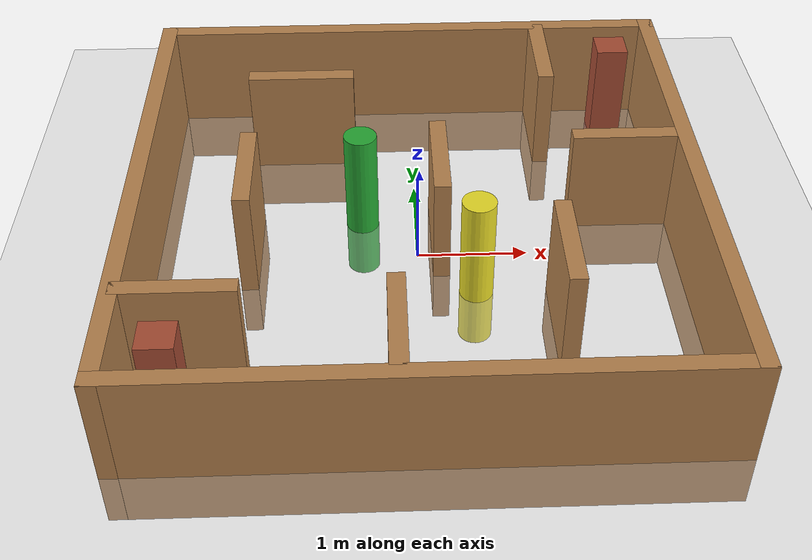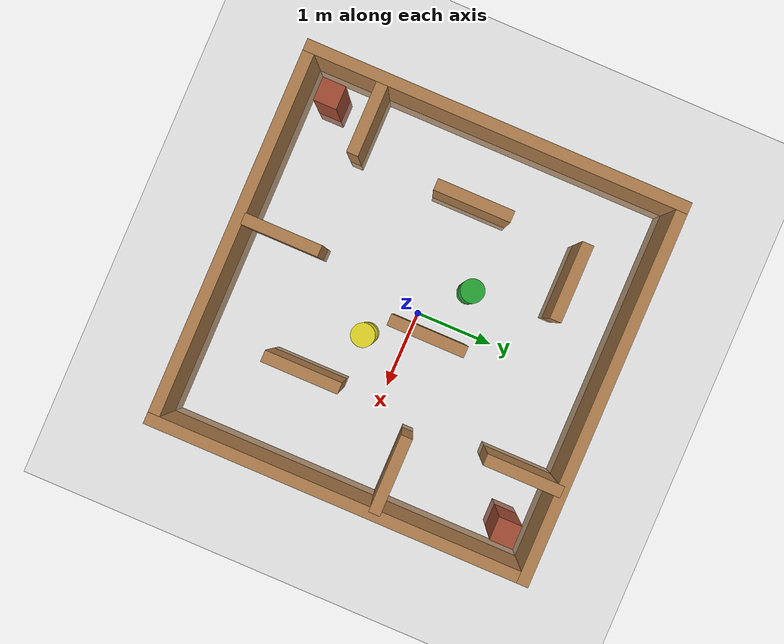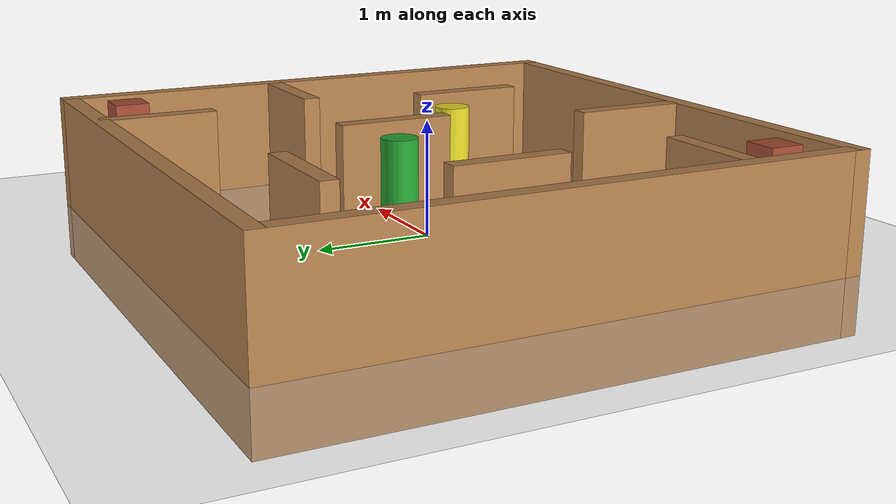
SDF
<sdf version='1.4'>
  <world name='default'>
    <!-- A global light source -->
    <include>
      <uri>model://sun</uri>
    </include>

    <!-- A ground plane -->
    <include>
      <uri>model://ground_plane</uri>
    </include>

    <physics type="ode">
      <real_time_update_rate>1000.0</real_time_update_rate>
      <max_step_size>0.001</max_step_size>
      <real_time_factor>1</real_time_factor>
      <ode>
        <solver>
          <type>quick</type>
          <iters>150</iters>
          <precon_iters>0</precon_iters>
          <sor>1.400000</sor>
          <use_dynamic_moi_rescaling>1</use_dynamic_moi_rescaling>
        </solver>
        <constraints>
          <cfm>0.00001</cfm>
          <erp>0.2</erp>
          <contact_max_correcting_vel>2000.000000</contact_max_correcting_vel>
          <contact_surface_layer>0.01000</contact_surface_layer>
        </constraints>
      </ode>
    </physics>

    <!-- Load world -->
    <include>
      <uri>model://my_plaza</uri>
    </include>

    <scene>
      <ambient>0.4 0.4 0.4 1</ambient>
      <background>0.7 0.7 0.7 1</background>
      <shadows>true</shadows>
    </scene>

    <gui fullscreen='0'>
      <camera name='user_camera'>
        <pose>0.8 0.0 12.0 0 1.5708 0</pose>
        <view_controller>orbit</view_controller>
      </camera>
    </gui>
  </world>
</sdf>

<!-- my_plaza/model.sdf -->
<sdf version='1.6'>
  <model name='my_plaza'>
    <pose frame=''>0 0 0 0 -0 0</pose>
    <link name='Wall_0'>
      <collision name='Wall_0_Collision'>
        <geometry>
          <box>
            <size>5 0.15 1.5</size>
          </box>
        </geometry>
        <pose frame=''>0 0 0.25 0 -0 0</pose>
      </collision>
      <visual name='Wall_0_Visual'>
        <pose frame=''>0 0 0.25 0 -0 0</pose>
        <geometry>
          <box>
            <size>5 0.15 1.5</size>
          </box>
        </geometry>
        <material>
          <script>
            <uri>file://media/materials/scripts/gazebo.material</uri>
            <name>Gazebo/Wood</name>
          </script>
          <ambient>1 1 1 1</ambient>
        </material>
      </visual>
      <pose frame=''>-2.425 0 0 0 -0 1.5708</pose>
    </link>
    <link name='Wall_11'>
      <collision name='Wall_11_Collision'>
        <geometry>
          <box>
            <size>1 0.15 1.5</size>
          </box>
        </geometry>
        <pose frame=''>0 0 0.25 0 -0 0</pose>
      </collision>
      <visual name='Wall_11_Visual'>
        <pose frame=''>0 0 0.25 0 -0 0</pose>
        <geometry>
          <box>
            <size>1 0.15 1.5</size>
          </box>
        </geometry>
        <material>
          <script>
            <uri>file://media/materials/scripts/gazebo.material</uri>
            <name>Gazebo/Wood</name>
          </script>
          <ambient>1 1 1 1</ambient>
        </material>
      </visual>
      <pose frame=''>-1.937 -1.467 0 0 -0 0</pose>
    </link>
    <link name='Wall_13'>
      <collision name='Wall_13_Collision'>
        <geometry>
          <box>
            <size>1 0.15 1.5</size>
          </box>
        </geometry>
        <pose frame=''>0 0 0.25 0 -0 0</pose>
      </collision>
      <visual name='Wall_13_Visual'>
        <pose frame=''>0 0 0.25 0 -0 0</pose>
        <geometry>
          <box>
            <size>1 0.15 1.5</size>
          </box>
        </geometry>
        <material>
          <script>
            <uri>file://media/materials/scripts/gazebo.material</uri>
            <name>Gazebo/Wood</name>
          </script>
          <ambient>1 1 1 1</ambient>
        </material>
      </visual>
      <pose frame=''>-0.22 -1.866 0 0 0 -1.5708</pose>
    </link>
    <link name='Wall_15'>
      <collision name='Wall_15_Collision'>
        <geometry>
          <box>
            <size>1 0.15 1.5</size>
          </box>
        </geometry>
        <pose frame=''>0 0 0.25 0 -0 0</pose>
      </collision>
      <visual name='Wall_15_Visual'>
        <pose frame=''>0 0 0.25 0 -0 0</pose>
        <geometry>
          <box>
            <size>1 0.15 1.5</size>
          </box>
        </geometry>
        <material>
          <script>
            <uri>file://media/materials/scripts/gazebo.material</uri>
            <name>Gazebo/Wood</name>
          </script>
          <ambient>1 1 1 1</ambient>
        </material>
      </visual>
      <pose frame=''>1.195 -1.002 0 0 -0 1.5708</pose>
    </link>
    <link name='Wall_17'>
      <collision name='Wall_17_Collision'>
        <geometry>
          <box>
            <size>1 0.15 1.5</size>
          </box>
        </geometry>
        <pose frame=''>0 0 0.25 0 -0 0</pose>
      </collision>
      <visual name='Wall_17_Visual'>
        <pose frame=''>0 0 0.25 0 -0 0</pose>
        <geometry>
          <box>
            <size>1 0.15 1.5</size>
          </box>
        </geometry>
        <material>
          <script>
            <uri>file://media/materials/scripts/gazebo.material</uri>
            <name>Gazebo/Wood</name>
          </script>
          <ambient>1 1 1 1</ambient>
        </material>
      </visual>
      <pose frame=''>1.288 1.93 0 0 0 -1.5708</pose>
    </link>
    <link name='Wall_19'>
      <collision name='Wall_19_Collision'>
        <geometry>
          <box>
            <size>1 0.15 1.5</size>
          </box>
        </geometry>
        <pose frame=''>0 0 0.25 0 -0 0</pose>
      </collision>
      <visual name='Wall_19_Visual'>
        <pose frame=''>0 0 0.25 0 -0 0</pose>
        <geometry>
          <box>
            <size>1 0.15 1.5</size>
          </box>
        </geometry>
        <material>
          <script>
            <uri>file://media/materials/scripts/gazebo.material</uri>
            <name>Gazebo/Wood</name>
          </script>
          <ambient>1 1 1 1</ambient>
        </material>
      </visual>
      <pose frame=''>1.91128 0.4632 0 0 -0 0</pose>
    </link>
    <link name='Wall_2'>
      <collision name='Wall_2_Collision'>
        <geometry>
          <box>
            <size>5 0.15 1.5</size>
          </box>
        </geometry>
        <pose frame=''>0 0 0.25 0 -0 0</pose>
      </collision>
      <visual name='Wall_2_Visual'>
        <pose frame=''>0 0 0.25 0 -0 0</pose>
        <geometry>
          <box>
            <size>5 0.15 1.5</size>
          </box>
        </geometry>
        <material>
          <script>
            <uri>file://media/materials/scripts/gazebo.material</uri>
            <name>Gazebo/Wood</name>
          </script>
          <ambient>1 1 1 1</ambient>
        </material>
      </visual>
      <pose frame=''>0 2.425 0 0 -0 0</pose>
    </link>
    <link name='Wall_21'>
      <collision name='Wall_21_Collision'>
        <geometry>
          <box>
            <size>1 0.15 1.5</size>
          </box>
        </geometry>
        <pose frame=''>0 0 0.25 0 -0 0</pose>
      </collision>
      <visual name='Wall_21_Visual'>
        <pose frame=''>0 0 0.25 0 -0 0</pose>
        <geometry>
          <box>
            <size>1 0.15 1.5</size>
          </box>
        </geometry>
        <material>
          <script>
            <uri>file://media/materials/scripts/gazebo.material</uri>
            <name>Gazebo/Wood</name>
          </script>
          <ambient>1 1 1 1</ambient>
        </material>
      </visual>
      <pose frame=''>0.204 0.215 0 0 0 -1.5708</pose>
    </link>
    <link name='Wall_3'>
      <collision name='Wall_3_Collision'>
        <geometry>
          <box>
            <size>5 0.15 1.5</size>
          </box>
        </geometry>
        <pose frame=''>0 0 0.25 0 -0 0</pose>
      </collision>
      <visual name='Wall_3_Visual'>
        <pose frame=''>0 0 0.25 0 -0 0</pose>
        <geometry>
          <box>
            <size>5 0.15 1.5</size>
          </box>
        </geometry>
        <material>
          <script>
            <uri>file://media/materials/scripts/gazebo.material</uri>
            <name>Gazebo/Wood</name>
          </script>
          <ambient>1 1 1 1</ambient>
        </material>
      </visual>
      <pose frame=''>2.425 0 0 0 0 -1.5708</pose>
    </link>
    <link name='Wall_4'>
      <collision name='Wall_4_Collision'>
        <geometry>
          <box>
            <size>5 0.15 1.5</size>
          </box>
        </geometry>
        <pose frame=''>0 0 0.25 0 -0 0</pose>
      </collision>
      <visual name='Wall_4_Visual'>
        <pose frame=''>0 0 0.25 0 -0 0</pose>
        <geometry>
          <box>
            <size>5 0.15 1.5</size>
          </box>
        </geometry>
        <material>
          <script>
            <uri>file://media/materials/scripts/gazebo.material</uri>
            <name>Gazebo/Wood</name>
          </script>
          <ambient>1 1 1 1</ambient>
        </material>
      </visual>
      <pose frame=''>0 -2.425 0 0 -0 3.14159</pose>
    </link>
    <link name='Wall_7'>
      <collision name='Wall_7_Collision'>
        <geometry>
          <box>
            <size>1 0.15 1.5</size>
          </box>
        </geometry>
        <pose frame=''>0 0 0.25 0 -0 0</pose>
      </collision>
      <visual name='Wall_7_Visual'>
        <pose frame=''>0 0 0.25 0 -0 0</pose>
        <geometry>
          <box>
            <size>1 0.15 1.5</size>
          </box>
        </geometry>
        <material>
          <script>
            <uri>file://media/materials/scripts/gazebo.material</uri>
            <name>Gazebo/Wood</name>
          </script>
          <ambient>1 1 1 1</ambient>
        </material>
      </visual>
      <pose frame=''>-1.064 1.548 0 0 -0 0</pose>
    </link>
    <link name='Wall_9'>
      <collision name='Wall_9_Collision'>
        <geometry>
          <box>
            <size>1 0.15 1.5</size>
          </box>
        </geometry>
        <pose frame=''>0 0 0.25 0 -0 0</pose>
      </collision>
      <visual name='Wall_9_Visual'>
        <pose frame=''>0 0 0.25 0 -0 0</pose>
        <geometry>
          <box>
            <size>1 0.15 1.5</size>
          </box>
        </geometry>
        <material>
          <script>
            <uri>file://media/materials/scripts/gazebo.material</uri>
            <name>Gazebo/Wood</name>
          </script>
          <ambient>1 1 1 1</ambient>
        </material>
      </visual>
      <pose frame=''>-1.502 0.092 0 0 0 -1.5708</pose>
    </link>

    <link name='Added_Cylinder_1'>
      <collision name='Added_Cylinder_1_Collision'>
        <geometry>
          <cylinder>
            <radius>0.15</radius>
            <length>1.5</length>
          </cylinder>
        </geometry>
        <pose frame=''>0 0 0.25 0 -0 0</pose>
      </collision>
      <visual name='Added_Cylinder_1_Visual'>
        <pose frame=''>0 0 0.25 0 -0 0</pose>
        <geometry>
          <cylinder>
            <radius>0.15</radius>
            <length>1.5</length>
          </cylinder>
        </geometry>
        <material>
          <script>
            <uri>file://media/materials/scripts/gazebo.material</uri>
            <name>Gazebo/Yellow</name>
          </script>
          <ambient>1 1 1 1</ambient>
        </material>
      </visual>
      <pose frame=''>0.5 -0.5 0 0 0 0</pose>
    </link>

    <link name='Added_Cylinder_2'>
      <collision name='Added_Cylinder_2_Collision'>
        <geometry>
          <cylinder>
            <radius>0.15</radius>
            <length>1.5</length>
          </cylinder>
        </geometry>
        <pose frame=''>0 0 0.25 0 -0 0</pose>
      </collision>
      <visual name='Added_Cylinder_2_Visual'>
        <pose frame=''>0 0 0.25 0 -0 0</pose>
        <geometry>
          <cylinder>
            <radius>0.15</radius>
            <length>1.5</length>
          </cylinder>
        </geometry>
        <material>
          <script>
            <uri>file://media/materials/scripts/gazebo.material</uri>
            <name>Gazebo/Green</name>
          </script>
          <ambient>1 1 1 1</ambient>
        </material>
      </visual>
      <pose frame=''>-0.5 0.5 0 0 0 0</pose>
    </link>

    <link name='Added_Box_1'>
      <collision name='Added_Box_1_Collision'>
        <geometry>
          <box>
            <size>0.3 0.3 1.5</size>
          </box>
        </geometry>
        <pose frame=''>0 0 0.25 0 -0 0</pose>
      </collision>
      <visual name='Added_Box_1_Visual'>
        <pose frame=''>0 0 0.25 0 -0 0</pose>
        <geometry>
          <box>
            <size>0.3 0.3 1.5</size>
          </box>
        </geometry>
        <material>
          <script>
            <uri>file://media/materials/scripts/gazebo.material</uri>
            <name>Gazebo/Bricks</name>
          </script>
          <ambient>1 1 1 1</ambient>
        </material>
      </visual>
      <pose frame=''>2 2 0 0 0 0</pose>
    </link>

    <link name='Added_Box_2'>
      <collision name='Added_Box_2_Collision'>
        <geometry>
          <box>
            <size>0.3 0.3 1.5</size>
          </box>
        </geometry>
        <pose frame=''>0 0 0.25 0 -0 0</pose>
      </collision>
      <visual name='Added_Box_2_Visual'>
        <pose frame=''>0 0 0.25 0 -0 0</pose>
        <geometry>
          <box>
            <size>0.3 0.3 1.5</size>
          </box>
        </geometry>
        <material>
          <script>
            <uri>file://media/materials/scripts/gazebo.material</uri>
            <name>Gazebo/Bricks</name>
          </script>
          <ambient>1 1 1 1</ambient>
        </material>
      </visual>
      <pose frame=''>-2 -2 0 0 0 0</pose>
    </link>

    <static>1</static>
  </model>
</sdf>
